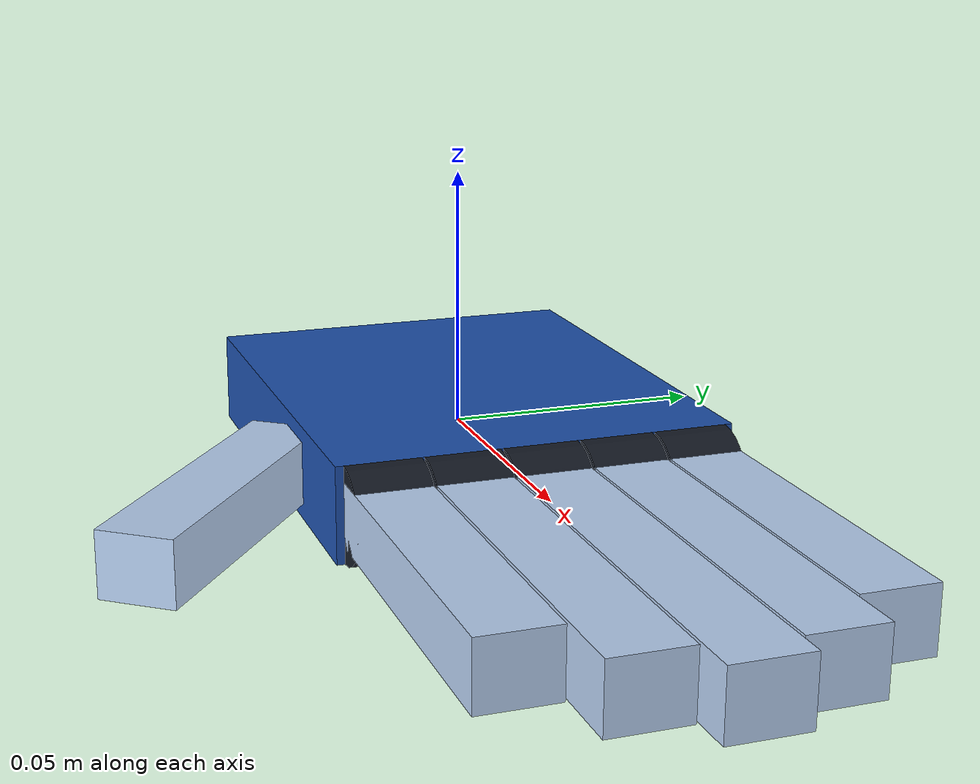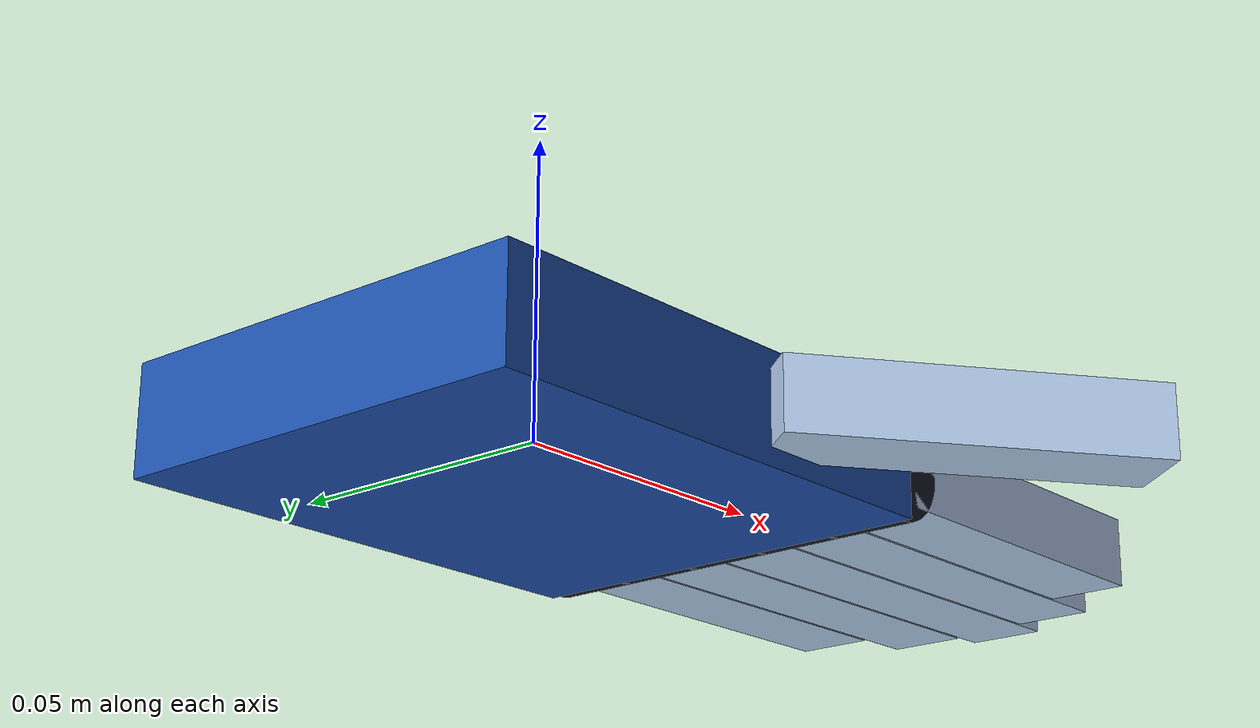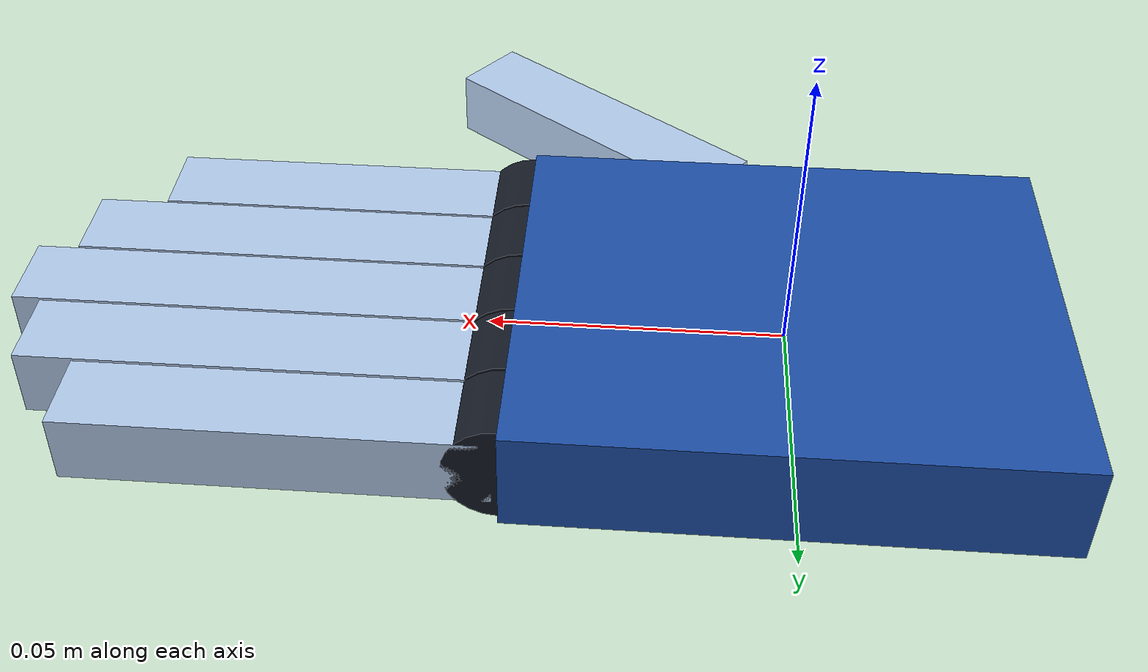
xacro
<?xml version="1.0"?>
<robot xmlns:xacro="http://www.ros.org/wiki/xacro" name="virtual_dex_hand">
  <!-- All dimensions and axes are nominal visualization assumptions (SI units). -->
  <xacro:property name="palm_x" value="0.090"/>
  <xacro:property name="palm_y" value="0.075"/>
  <xacro:property name="palm_z" value="0.018"/>
  <xacro:property name="finger_length" value="0.075"/>
  <xacro:property name="finger_width" value="0.014"/>
  <xacro:property name="finger_depth" value="0.012"/>
  <xacro:property name="palm_mass" value="0.25"/>
  <xacro:property name="finger_mass" value="0.03"/>

  <material name="palm_blue"><color rgba="0.12 0.32 0.68 1"/></material>
  <material name="finger_light"><color rgba="0.72 0.82 0.95 1"/></material>
  <material name="joint_dark"><color rgba="0.08 0.10 0.14 1"/></material>

  <xacro:macro name="box_inertial" params="mass x y z origin_x:=0 origin_y:=0 origin_z:=0">
    <inertial>
      <origin xyz="${origin_x} ${origin_y} ${origin_z}"/>
      <mass value="${mass}"/>
      <inertia
        ixx="${mass * (y*y + z*z) / 12.0}"
        ixy="0.0"
        ixz="0.0"
        iyy="${mass * (x*x + z*z) / 12.0}"
        iyz="0.0"
        izz="${mass * (x*x + y*y) / 12.0}"/>
    </inertial>
  </xacro:macro>

  <link name="base_link">
    <visual>
      <geometry><box size="${palm_x} ${palm_y} ${palm_z}"/></geometry>
      <material name="palm_blue"/>
    </visual>
    <collision>
      <geometry><box size="${palm_x} ${palm_y} ${palm_z}"/></geometry>
    </collision>
    <xacro:box_inertial
      mass="${palm_mass}"
      x="${palm_x}"
      y="${palm_y}"
      z="${palm_z}"/>
  </link>

  <xacro:macro name="generic_digit" params="index y length:=0.075">
    <link name="motor_${index}_link">
      <visual>
        <origin xyz="${length/2} 0 0"/>
        <geometry><box size="${length} ${finger_width} ${finger_depth}"/></geometry>
        <material name="finger_light"/>
      </visual>
      <visual>
        <geometry><cylinder radius="0.009" length="${finger_width}"/></geometry>
        <origin rpy="${pi/2} 0 0"/>
        <material name="joint_dark"/>
      </visual>
      <collision>
        <origin xyz="${length/2} 0 0"/>
        <geometry><box size="${length} ${finger_width} ${finger_depth}"/></geometry>
      </collision>
      <xacro:box_inertial
        mass="${finger_mass}"
        x="${length}"
        y="${finger_width}"
        z="${finger_depth}"
        origin_x="${length/2}"/>
    </link>
    <joint name="motor_${index}_joint" type="revolute">
      <parent link="base_link"/>
      <child link="motor_${index}_link"/>
      <origin xyz="${palm_x/2} ${y} 0"/>
      <axis xyz="0 1 0"/>
      <limit lower="0.0" upper="1.2" effort="1.0" velocity="3.0"/>
      <dynamics damping="0.08" friction="0.01"/>
    </joint>
  </xacro:macro>

  <xacro:generic_digit index="1" y="0.029" length="0.070"/>
  <xacro:generic_digit index="2" y="0.0145" length="0.080"/>
  <xacro:generic_digit index="3" y="0.0" length="0.085"/>
  <xacro:generic_digit index="4" y="-0.0145" length="0.078"/>
  <xacro:generic_digit index="5" y="-0.029" length="0.066"/>

  <!-- Sixth generic coordinate: deliberately not assigned an anatomical name. -->
  <link name="motor_6_link">
    <visual>
      <origin xyz="0.030 0 0"/>
      <geometry><box size="0.060 ${finger_width} ${finger_depth}"/></geometry>
      <material name="finger_light"/>
    </visual>
    <collision>
      <origin xyz="0.030 0 0"/>
      <geometry><box size="0.060 ${finger_width} ${finger_depth}"/></geometry>
    </collision>
    <xacro:box_inertial
      mass="${finger_mass}"
      x="0.060"
      y="${finger_width}"
      z="${finger_depth}"
      origin_x="0.030"/>
  </link>
  <joint name="motor_6_joint" type="revolute">
    <parent link="base_link"/>
    <child link="motor_6_link"/>
    <origin xyz="0.010 ${-palm_y/2} 0" rpy="0 0 -0.65"/>
    <axis xyz="1 0 0"/>
    <limit lower="0.0" upper="0.8" effort="1.0" velocity="3.0"/>
    <dynamics damping="0.08" friction="0.01"/>
  </joint>
</robot>
